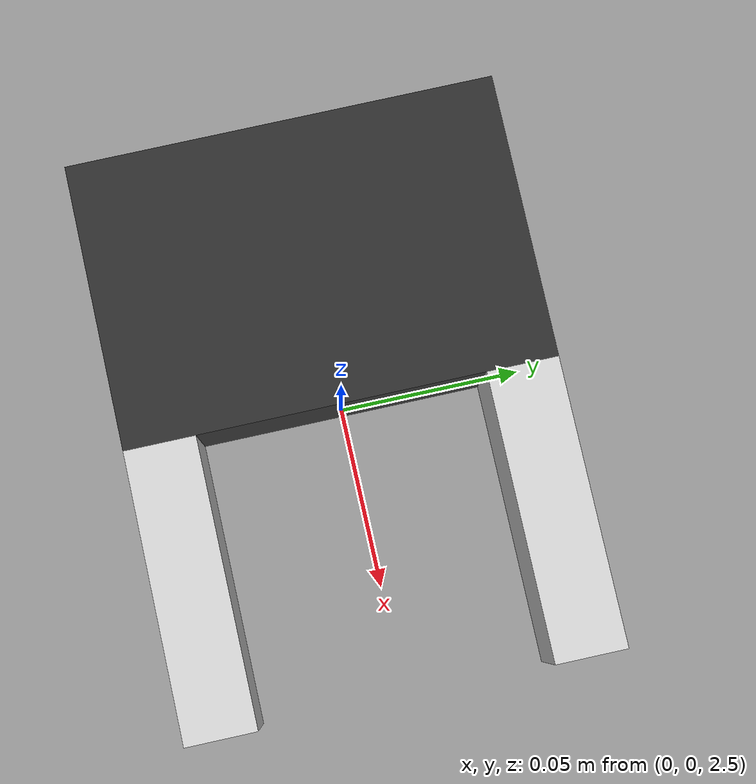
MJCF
<mujoco model="table_arena">
  <worldbody>
    <body name="toy_gripper" pos="0 0 2.5">
      <body name="left_gripper" pos="0.04 0.05 0">
        <geom type="box" size="0.04 0.01 0.015" rgba="0.9 0.9 0.9 0.9" friction="10 0.05 0.001" mass="1" contype="1"
              conaffinity="1" solimp="0.99 0.9999 0.001 0.1 6" solref="-60000 -1000"/>
        <joint type="slide" axis="0 -1 0" limited="true" range="0 0.04" name="left_finger_joint"/>
        <site name="left_site" rgba="0 0 0 0"/>
      </body>
      <body name="right_gripper" pos="0.04 -0.05 0">
        <geom type="box" size="0.04 0.01 0.015" rgba="0.9 0.9 0.9 0.9" friction="10 0.05 0.001" mass="1" contype="1"
              conaffinity="1" solimp="0.99 0.9999 0.001 0.1 6" solref="-60000 -1000"/>
        <joint type="slide" axis="0 1 0" limited="true" range="0 0.04" name="right_finger_joint"/>
        <site name="right_site" rgba="0 0 0 0"/>
      </body>
      <body name="bottom_gripper" pos="-0.04 0 0">
        <geom type="box" size="0.04 0.06 0.015" rgba="0.2 0.2 0.2 0.99" friction="5 0.01 0.001" mass="10" contype="1"
              conaffinity="7"/>
        <site name="bottom_site" rgba="0 0 0 0"/>
      </body>
      <joint type="free" name="gripper" damping="2"/>
    </body>
  </worldbody>
  <actuator>
    <general name="left_finger_motor" joint="left_finger_joint" ctrllimited="true" ctrlrange="-1 1"
             gainprm="10 0 0 0 0 0 0 0 0 0"/>
    <general name="right_finger_motor" joint="right_finger_joint" ctrllimited="true" ctrlrange="-1 1"
             gainprm="10 0 0 0 0 0 0 0 0 0"/>
    <general name="left_gravity" site="left_site" biastype="affine" biasprm="9.81 0 0 0 0 0 0 0 0 0"
             gear="0 0 1 0 0 0"/>
    <general name="right_gravity" site="right_site" biastype="affine" biasprm="9.81 0 0 0 0 0 0 0 0 0"
             gear="0 0 1 0 0 0"/>
    <general name="bottom_gravity" site="bottom_site" biastype="affine" biasprm="98.1 0 0 0 0 0 0 0 0 0"
             gear="0 0 1 0 0 0"/>
  </actuator>
</mujoco>
